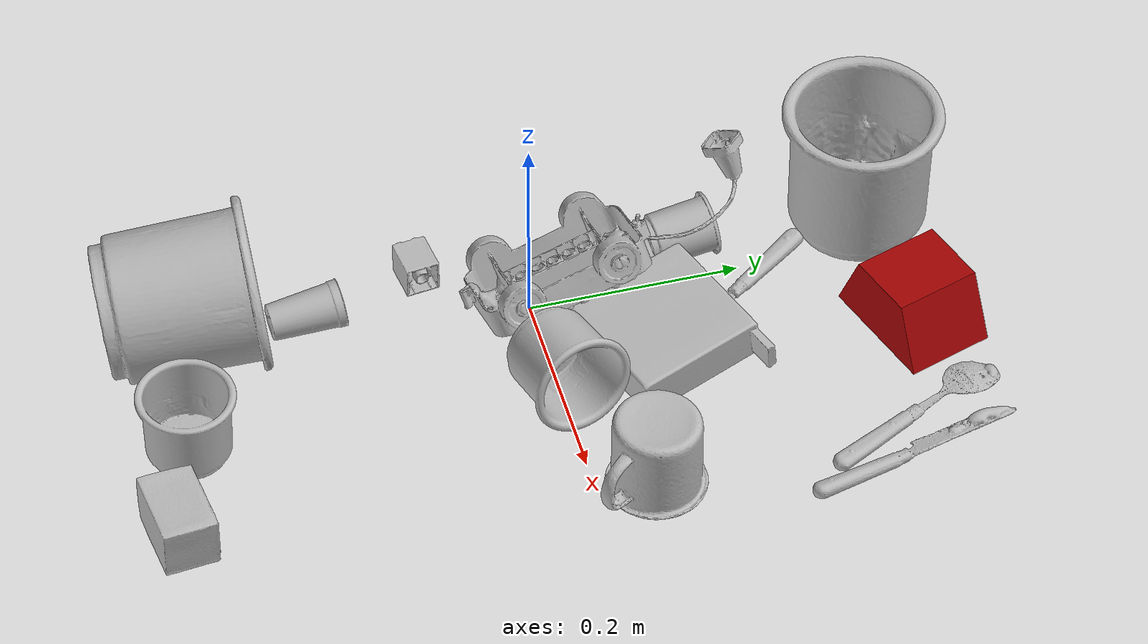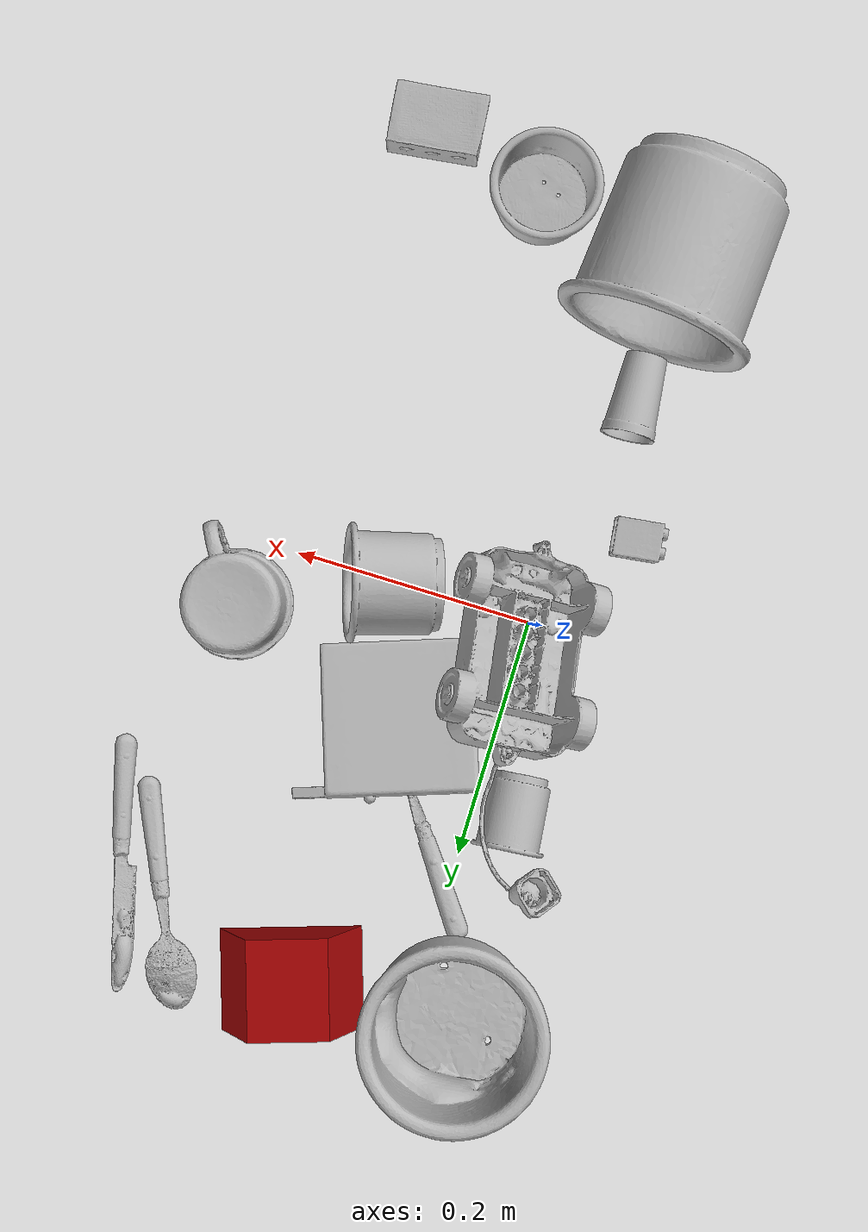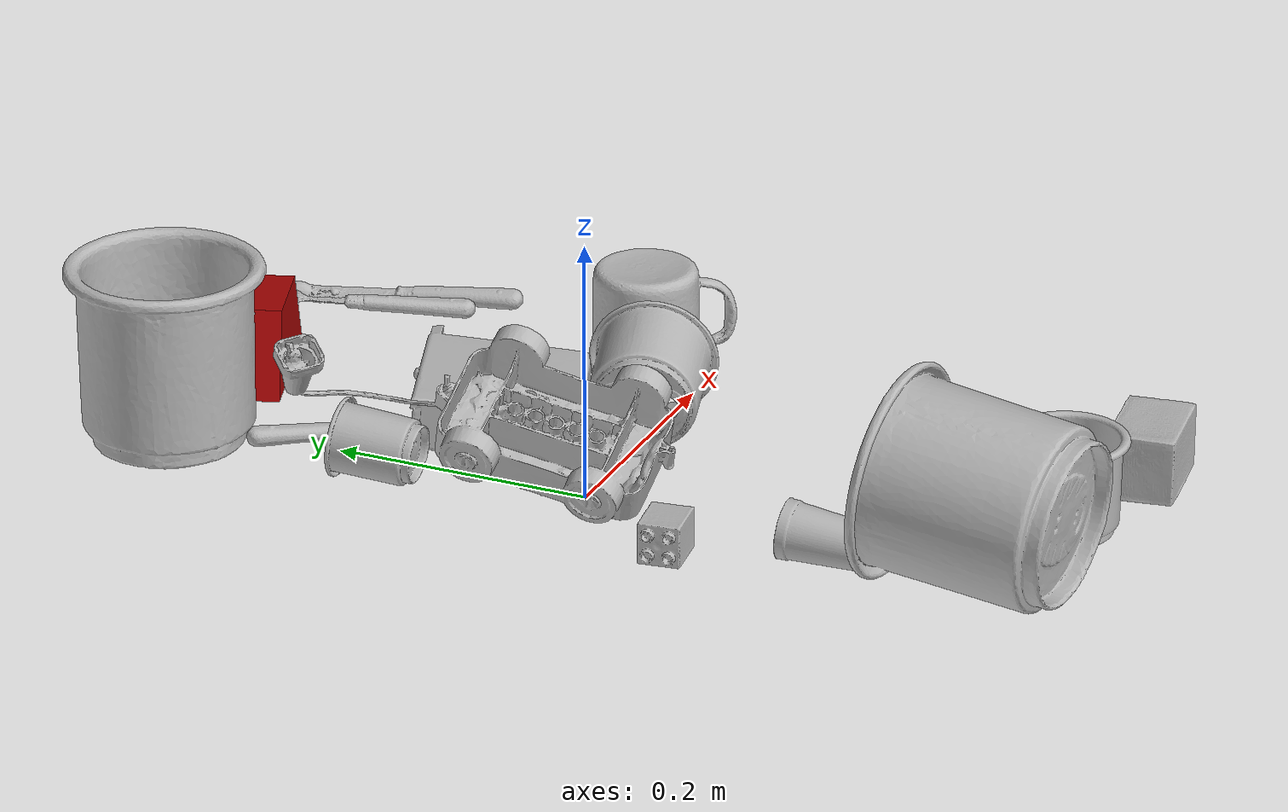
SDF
<sdf version="1.4">
  <world name="default">
    <light name="light1" type="point">
      <pose>0 0 1 0 0 0</pose>
      <diffuse>3 3 3 1</diffuse>
      <specular>3 3 3 1</specular>
    </light>
    <light name="light2" type="point">
      <pose>0 0.5 2 0 0 0</pose>
      <diffuse>1 1 1 1</diffuse>
      <specular>1 1 1 1</specular>
    </light>
    <light name="light3" type="point">
      <pose>0 0.5 2 0 0 0</pose>
      <diffuse>3 3 3 1</diffuse>
      <specular>3 3 3 1</specular>
    </light>
    <scene>
      <ambient>0.7 0.7 0.7</ambient>
    </scene>
    <model name="cup1">
      <link name="link_cup1">
        <collision name="default">
          <geometry>
            <mesh>
              <uri>model://i_cups/collision_meshes/collision.obj</uri>
              <scale>1.0 1.0 1.0</scale>
            </mesh>
          </geometry>
          <surface>
            <friction>
              <ode>
                <mu>0.5</mu>
                <mu2>0.5</mu2>
              </ode>
            </friction>
          <contact>
        <ode>
            <max_vel>0</max_vel>
            <min_depth>0.0001</min_depth>
            <kp>1e8</kp>
        </ode>
    </contact></surface>
        </collision>
        <visual name="default">
          <geometry>
            <mesh>
              <uri>model://i_cups/visual_meshes/visual.dae</uri>
              <scale>1.0 1.0 1.0</scale>
            </mesh>
          </geometry>
        </visual>
        <inertial>
          <mass>0.06118306145071983</mass>
          <pose>0.00011240330786677077 0.00016797454736661166 -0.0008579033892601728 -0.02898356853937009 -0.0398729445813228 -0.3459020996231002</pose>
          <inertia>
            <ixx>8.470886e-05</ixx>
            <iyy>8.5455235e-05</iyy>
            <izz>9.467588e-05</izz>
            <ixy>0</ixy>
            <ixz>0</ixz>
            <iyz>0</iyz>
          </inertia>
        </inertial>
      </link>
      <pose>0.11659855395555496 0.0012161124031990767 0.04509145766496658 -1.4465068823867593 -0.23872917294112017 -1.3255682798241648</pose>
    </model>
    <model name="silverware1">
      <link name="link_silverware1">
        <collision name="default">
          <geometry>
            <mesh>
              <uri>model://fork/collision_meshes/collision.obj</uri>
              <scale>1.0 1.0 1.0</scale>
            </mesh>
          </geometry>
          <surface>
            <friction>
              <ode>
                <mu>0.5</mu>
                <mu2>0.5</mu2>
              </ode>
            </friction>
          <contact>
        <ode>
            <max_vel>0</max_vel>
            <min_depth>0.0001</min_depth>
            <kp>1e8</kp>
        </ode>
    </contact></surface>
        </collision>
        <visual name="default">
          <geometry>
            <mesh>
              <uri>model://fork/visual_meshes/visual.dae</uri>
              <scale>1.0 1.0 1.0</scale>
            </mesh>
          </geometry>
        </visual>
        <inertial>
          <mass>0.031184576451778412</mass>
          <pose>-0.02957005426287651 0.00046588247641921043 0.0003218861820641905 -0.013551007459636681 -0.010977840933376642 0.014453907264632249</pose>
          <inertia>
            <ixx>1.0931959e-06</ixx>
            <iyy>8.1413935e-05</iyy>
            <izz>8.1902916e-05</izz>
            <ixy>0</ixy>
            <ixz>0</ixz>
            <iyz>0</iyz>
          </inertia>
        </inertial>
      </link>
      <pose>0.03534577041864395 0.1871529072523117 0.00743070337921381 -3.070786799553194 0.00286193495029838 -0.9481583171022188</pose>
    </model>
    <model name="cup2">
      <link name="link_cup2">
        <collision name="default">
          <geometry>
            <mesh>
              <uri>model://cup_small/collision_meshes/collision.obj</uri>
              <scale>1.0 1.0 1.0</scale>
            </mesh>
          </geometry>
          <surface>
            <friction>
              <ode>
                <mu>0.5</mu>
                <mu2>0.5</mu2>
              </ode>
            </friction>
          <contact>
        <ode>
            <max_vel>0</max_vel>
            <min_depth>0.0001</min_depth>
            <kp>1e8</kp>
        </ode>
    </contact></surface>
        </collision>
        <visual name="default">
          <geometry>
            <mesh>
              <uri>model://cup_small/visual_meshes/visual.dae</uri>
              <scale>1.0 1.0 1.0</scale>
            </mesh>
          </geometry>
        </visual>
        <inertial>
          <mass>0.03407767415046692</mass>
          <pose>0.0001048250705935061 -0.00033778452780097723 -0.010742825455963612 -0.011493231776776816 -0.015280154496379641 -0.5058119732839097</pose>
          <inertia>
            <ixx>2.0064415e-05</ixx>
            <iyy>2.0167918e-05</iyy>
            <izz>9.059144e-06</izz>
            <ixy>0</ixy>
            <ixz>0</ixz>
            <iyz>0</iyz>
          </inertia>
        </inertial>
      </link>
      <pose>-0.030096622183918953 -0.20492346584796906 0.020111143589019775 1.4948616134895831 0.14983377309961093 -3.110968208878145</pose>
    </model>
    <model name="silverware2">
      <link name="link_silverware2">
        <collision name="default">
          <geometry>
            <mesh>
              <uri>model://spoon/collision_meshes/collision.obj</uri>
              <scale>1.0 1.0 1.0</scale>
            </mesh>
          </geometry>
          <surface>
            <friction>
              <ode>
                <mu>0.5</mu>
                <mu2>0.5</mu2>
              </ode>
            </friction>
          <contact>
        <ode>
            <max_vel>0</max_vel>
            <min_depth>0.0001</min_depth>
            <kp>1e8</kp>
        </ode>
    </contact></surface>
        </collision>
        <visual name="default">
          <geometry>
            <mesh>
              <uri>model://spoon/visual_meshes/visual.dae</uri>
              <scale>1.0 1.0 1.0</scale>
            </mesh>
          </geometry>
        </visual>
        <inertial>
          <mass>0.016614587977528572</mass>
          <pose>-0.005526317749172449 -0.0016034182626754045 -0.0007271657232195139 0.03521671066550848 -0.039065848782153245 0.0061506117821598484</pose>
          <inertia>
            <ixx>9.241303e-07</ixx>
            <iyy>6.321795e-05</iyy>
            <izz>6.367369e-05</izz>
            <ixy>0</ixy>
            <ixz>0</ixz>
            <iyz>0</iyz>
          </inertia>
        </inertial>
      </link>
      <pose>0.22674798965454102 0.3042502701282501 0.010133570991456509 3.1049901983894217 -0.06197767391446496 1.993896854322278</pose>
    </model>
    <model name="cup3">
      <link name="link_cup3">
        <collision name="default">
          <geometry>
            <mesh>
              <uri>model://mug/collision_meshes/collision.obj</uri>
              <scale>1.0 1.0 1.0</scale>
            </mesh>
          </geometry>
          <surface>
            <friction>
              <ode>
                <mu>0.5</mu>
                <mu2>0.5</mu2>
              </ode>
            </friction>
          <contact>
        <ode>
            <max_vel>0</max_vel>
            <min_depth>0.0001</min_depth>
            <kp>1e8</kp>
        </ode>
    </contact></surface>
        </collision>
        <visual name="default">
          <geometry>
            <mesh>
              <uri>model://mug/visual_meshes/visual.dae</uri>
              <scale>1.0 1.0 1.0</scale>
            </mesh>
          </geometry>
        </visual>
        <inertial>
          <mass>0.2187051922082901</mass>
          <pose>0.009571668691933155 0.0008143252925947309 -0.0109473317861557 -0.1298317614392908 0.08737757629698793 0.05507296169044089</pose>
          <inertia>
            <ixx>0.00021724429</ixx>
            <iyy>0.00024264908</iyy>
            <izz>0.00028062687</izz>
            <ixy>0</ixy>
            <ixz>0</ixz>
            <iyz>0</iyz>
          </inertia>
        </inertial>
      </link>
      <pose>0.2420978844165802 0.044640179723501205 0.04095803573727608 -3.1415925586747084 4.3618055905424455e-08 2.1730205597248813</pose>
    </model>
    <model name="silverware3">
      <link name="link_silverware3">
        <collision name="default">
          <geometry>
            <mesh>
              <uri>model://knife/collision_meshes/collision.obj</uri>
              <scale>1.0 1.0 1.0</scale>
            </mesh>
          </geometry>
          <surface>
            <friction>
              <ode>
                <mu>0.5</mu>
                <mu2>0.5</mu2>
              </ode>
            </friction>
          <contact>
        <ode>
            <max_vel>0</max_vel>
            <min_depth>0.0001</min_depth>
            <kp>1e8</kp>
        </ode>
    </contact></surface>
        </collision>
        <visual name="default">
          <geometry>
            <mesh>
              <uri>model://knife/visual_meshes/visual.dae</uri>
              <scale>1.0 1.0 1.0</scale>
            </mesh>
          </geometry>
        </visual>
        <inertial>
          <mass>0.02527560666203499</mass>
          <pose>-0.02378525398671627 0.0015275124460458755 5.062016498413868e-05 0.07305987488321217 0.01724841707462807 -0.007409821427235137</pose>
          <inertia>
            <ixx>7.174241e-07</ixx>
            <iyy>9.710476e-05</iyy>
            <izz>9.733581e-05</izz>
            <ixy>0</ixy>
            <ixz>0</ixz>
            <iyz>0</iyz>
          </inertia>
        </inertial>
      </link>
      <pose>0.2630194127559662 0.2877998948097229 0.005810765083879232 2.8893742903526567 0.025914980576173016 1.837337923872709</pose>
    </model>
    <model name="cup4">
      <link name="link_cup4">
        <collision name="default">
          <geometry>
            <mesh>
              <uri>model://f_cups/collision_meshes/collision.obj</uri>
              <scale>2.0 2.0 2.0</scale>
            </mesh>
          </geometry>
          <surface>
            <friction>
              <ode>
                <mu>0.5</mu>
                <mu2>0.5</mu2>
              </ode>
            </friction>
          <contact>
        <ode>
            <max_vel>0</max_vel>
            <min_depth>0.0001</min_depth>
            <kp>1e8</kp>
        </ode>
    </contact></surface>
        </collision>
        <visual name="default">
          <geometry>
            <mesh>
              <uri>model://f_cups/visual_meshes/visual.dae</uri>
              <scale>2.0 2.0 2.0</scale>
            </mesh>
          </geometry>
        </visual>
        <inertial>
          <mass>0.45639780163764954</mass>
          <pose>-0.006342936772853136 -0.0012480145087465644 -0.007311072666198015 0.7862311529960513 -0.2607925047248709 -0.18237200478465204</pose>
          <inertia>
            <ixx>0.0017161043</ixx>
            <iyy>0.0018002132</iyy>
            <izz>0.0018740727</izz>
            <ixy>0</ixy>
            <ixz>0</ixz>
            <iyz>0</iyz>
          </inertia>
        </inertial>
      </link>
      <pose>-0.02710806205868721 -0.3209919035434723 0.07425680756568909 1.2958551009859636 -1.219428829918805 -2.958802160652511</pose>
    </model>
    <model name="cup41">
      <link name="link_cup41">
        <collision name="default">
          <geometry>
            <mesh>
              <uri>model://b_cups/collision_meshes/collision.obj</uri>
              <scale>1.0 1.0 1.0</scale>
            </mesh>
          </geometry>
          <surface>
            <friction>
              <ode>
                <mu>0.5</mu>
                <mu2>0.5</mu2>
              </ode>
            </friction>
          <contact>
        <ode>
            <max_vel>0</max_vel>
            <min_depth>0.0001</min_depth>
            <kp>1e8</kp>
        </ode>
    </contact></surface>
        </collision>
        <visual name="default">
          <geometry>
            <mesh>
              <uri>model://b_cups/visual_meshes/visual.dae</uri>
              <scale>1.0 1.0 1.0</scale>
            </mesh>
          </geometry>
        </visual>
        <inertial>
          <mass>0.02191556617617607</mass>
          <pose>0.0005182005115784705 0.0018058598507195711 -0.0013381809694692492 0.11356347292067202 0.038725069075056226 -0.34569439603942165</pose>
          <inertia>
            <ixx>1.4345273e-05</ixx>
            <iyy>1.4072923e-05</iyy>
            <izz>1.2071279e-05</izz>
            <ixy>0</ixy>
            <ixz>0</ixz>
            <iyz>0</iyz>
          </inertia>
        </inertial>
      </link>
      <pose>-0.032744377851486206 0.15198782086372375 0.02784038707613945 -1.4442521264843058 0.7727153962850627 0.1772276100013271</pose>
    </model>
    <model name="cup5">
      <link name="link_cup5">
        <collision name="default">
          <geometry>
            <mesh>
              <uri>model://e_cups/collision_meshes/collision.obj</uri>
              <scale>2.0 2.0 2.0</scale>
            </mesh>
          </geometry>
          <surface>
            <friction>
              <ode>
                <mu>0.5</mu>
                <mu2>0.5</mu2>
              </ode>
            </friction>
          <contact>
        <ode>
            <max_vel>0</max_vel>
            <min_depth>0.0001</min_depth>
            <kp>1e8</kp>
        </ode>
    </contact></surface>
        </collision>
        <visual name="default">
          <geometry>
            <mesh>
              <uri>model://e_cups/visual_meshes/visual.dae</uri>
              <scale>2.0 2.0 2.0</scale>
            </mesh>
          </geometry>
        </visual>
        <inertial>
          <mass>0.30448246002197266</mass>
          <pose>0.0022711469791829586 0.005759572610259056 -0.00776594178751111 0.6952384510578399 0.08767941436067322 -0.5235260729612989</pose>
          <inertia>
            <ixx>0.0010739095</ixx>
            <iyy>0.001122389</iyy>
            <izz>0.0010267813</izz>
            <ixy>0</ixy>
            <ixz>0</ixz>
            <iyz>0</iyz>
          </inertia>
        </inertial>
      </link>
      <pose>-0.03217391297221184 0.3269013464450836 0.07139374315738678 -0.007095848483150256 0.0037974319138210427 -0.3837369268060602</pose>
    </model>
    <model name="cup51">
      <link name="link_cup51">
        <collision name="default">
          <geometry>
            <mesh>
              <uri>model://h_cups/collision_meshes/collision.obj</uri>
              <scale>1.0 1.0 1.0</scale>
            </mesh>
          </geometry>
          <surface>
            <friction>
              <ode>
                <mu>0.5</mu>
                <mu2>0.5</mu2>
              </ode>
            </friction>
          <contact>
        <ode>
            <max_vel>0</max_vel>
            <min_depth>0.0001</min_depth>
            <kp>1e8</kp>
        </ode>
    </contact></surface>
        </collision>
        <visual name="default">
          <geometry>
            <mesh>
              <uri>model://h_cups/visual_meshes/visual.dae</uri>
              <scale>1.0 1.0 1.0</scale>
            </mesh>
          </geometry>
        </visual>
        <inertial>
          <mass>0.042455922812223434</mass>
          <pose>-2.703044083318673e-05 0.00023018660431262106 -0.0018405403243377805 -0.024361995264993386 0.06545231449212868 0.1288536550905752</pose>
          <inertia>
            <ixx>5.4829856e-05</ixx>
            <iyy>5.4175573e-05</iyy>
            <izz>5.7501496e-05</izz>
            <ixy>0</ixy>
            <ixz>0</ixz>
            <iyz>0</iyz>
          </inertia>
        </inertial>
      </link>
      <pose>0.09219150245189667 -0.34027552604675293 0.0377579964697361 -4.9909738905024255e-08 -4.665219913436017e-09 1.0411355286276243</pose>
    </model>
    <model name="toy1">
      <link name="link_toy1">
        <collision name="default">
          <geometry>
            <mesh>
              <uri>model://f_lego_duplo/collision_meshes/collision.obj</uri>
              <scale>1.0 1.0 1.0</scale>
            </mesh>
          </geometry>
          <surface>
            <friction>
              <ode>
                <mu>0.5</mu>
                <mu2>0.5</mu2>
              </ode>
            </friction>
          <contact>
        <ode>
            <max_vel>0</max_vel>
            <min_depth>0.0001</min_depth>
            <kp>1e8</kp>
        </ode>
    </contact></surface>
        </collision>
        <visual name="default">
          <geometry>
            <mesh>
              <uri>model://f_lego_duplo/visual_meshes/visual.dae</uri>
              <scale>1.0 1.0 1.0</scale>
            </mesh>
          </geometry>
        </visual>
        <inertial>
          <mass>0.02241816557943821</mass>
          <pose>2.3694117771810852e-05 0.0001339316659141332 0.0018837875686585903 0.029838520561624126 -0.014425134948969536 -0.6756620822172864</pose>
          <inertia>
            <ixx>4.7370827e-06</ixx>
            <iyy>4.779284e-06</iyy>
            <izz>4.1119874e-06</izz>
            <ixy>0</ixy>
            <ixz>0</ixz>
            <iyz>0</iyz>
          </inertia>
        </inertial>
      </link>
      <pose>-0.06655842065811157 -0.09234070032835007 0.01636396534740925 1.196682803248351 -1.5707906982630047 -1.0679195499248209</pose>
    </model>
    <model name="toy2">
      <link name="link_toy2">
        <collision name="default">
          <geometry>
            <mesh>
              <uri>model://nine_hole_peg_test/collision_meshes/collision.obj</uri>
              <scale>1.0 1.0 1.0</scale>
            </mesh>
          </geometry>
          <surface>
            <friction>
              <ode>
                <mu>0.5</mu>
                <mu2>0.5</mu2>
              </ode>
            </friction>
          <contact>
        <ode>
            <max_vel>0</max_vel>
            <min_depth>0.0001</min_depth>
            <kp>1e8</kp>
        </ode>
    </contact></surface>
        </collision>
        <visual name="default">
          <geometry>
            <mesh>
              <uri>model://nine_hole_peg_test/visual_meshes/visual.dae</uri>
              <scale>1.0 1.0 1.0</scale>
            </mesh>
          </geometry>
        </visual>
        <inertial>
          <mass>0.9336897134780884</mass>
          <pose>-0.004617386497557163 -0.009647615253925323 2.6460686058271676e-05 -0.0014666796876693252 0.0007194179493738156 -0.6342417556307235</pose>
          <inertia>
            <ixx>0.0014599775</ixx>
            <iyy>0.0013631656</iyy>
            <izz>0.0025583105</izz>
            <ixy>0</ixy>
            <ixz>0</ixz>
            <iyz>0</iyz>
          </inertia>
        </inertial>
      </link>
      <pose>0.0879354178905487 0.11395955085754395 0.027102155610919 -3.1378628087426392 -0.0989248769844205 1.9012574880631397</pose>
    </model>
    <model name="toy3">
      <link name="link_toy3">
        <collision name="default">
          <geometry>
            <mesh>
              <uri>model://prism/collision_meshes/collision.obj</uri>
              <scale>1.0 1.0 1.0</scale>
            </mesh>
          </geometry>
          <surface>
            <friction>
              <ode>
                <mu>0.5</mu>
                <mu2>0.5</mu2>
              </ode>
            </friction>
          <contact>
        <ode>
            <max_vel>0</max_vel>
            <min_depth>0.0001</min_depth>
            <kp>1e8</kp>
        </ode>
    </contact></surface>
        </collision>
        <visual name="default">
          <geometry>
            <mesh>
              <uri>model://prism/visual_meshes/visual.dae</uri>
              <scale>1.0 1.0 1.0</scale>
            </mesh>
          </geometry>
        </visual>
        <inertial>
          <mass>0.45664992928504944</mass>
          <pose>-9.85359656624496e-05 -4.96157269935793e-07 -0.0033869100734591484 0.0 0.006559178903460961 0.0</pose>
          <inertia>
            <ixx>0.0004121209</ixx>
            <iyy>0.00049805344</iyy>
            <izz>0.0006100559</izz>
            <ixy>0</ixy>
            <ixz>0</ixz>
            <iyz>0</iyz>
          </inertia>
        </inertial>
      </link>
      <pose>0.10217972099781036 0.339233934879303 0.03217000514268875 9.364712647302012e-08 8.272676185490563e-08 -2.8265785985731218</pose>
    </model>
    <model name="toy4">
      <link name="link_toy4">
        <collision name="default">
          <geometry>
            <mesh>
              <uri>model://g_lego_duplo/collision_meshes/collision.obj</uri>
              <scale>1.0 1.0 1.0</scale>
            </mesh>
          </geometry>
          <surface>
            <friction>
              <ode>
                <mu>0.5</mu>
                <mu2>0.5</mu2>
              </ode>
            </friction>
          <contact>
        <ode>
            <max_vel>0</max_vel>
            <min_depth>0.0001</min_depth>
            <kp>1e8</kp>
        </ode>
    </contact></surface>
        </collision>
        <visual name="default">
          <geometry>
            <mesh>
              <uri>model://g_lego_duplo/visual_meshes/visual.dae</uri>
              <scale>1.0 1.0 1.0</scale>
            </mesh>
          </geometry>
        </visual>
        <inertial>
          <mass>0.39620378613471985</mass>
          <pose>-0.05004769191145897 0.0017554654041305184 0.003880677744746208 0.010963058510667364 0.03810828654928447 -0.09653021192595126</pose>
          <inertia>
            <ixx>0.0005741041</ixx>
            <iyy>0.0017357017</iyy>
            <izz>0.0021714251</izz>
            <ixy>0</ixy>
            <ixz>0</ixz>
            <iyz>0</iyz>
          </inertia>
        </inertial>
      </link>
      <pose>-0.010866496711969376 0.08276346325874329 0.06150733679533005 2.763263603990643 -0.21777477579749052 1.716314468195856</pose>
    </model>
    <model name="toy5">
      <link name="link_toy5">
        <collision name="default">
          <geometry>
            <mesh>
              <uri>model://foam_brick/collision_meshes/collision.obj</uri>
              <scale>1.0 1.0 1.0</scale>
            </mesh>
          </geometry>
          <surface>
            <friction>
              <ode>
                <mu>0.5</mu>
                <mu2>0.5</mu2>
              </ode>
            </friction>
          <contact>
        <ode>
            <max_vel>0</max_vel>
            <min_depth>0.0001</min_depth>
            <kp>1e8</kp>
        </ode>
    </contact></surface>
        </collision>
        <visual name="default">
          <geometry>
            <mesh>
              <uri>model://foam_brick/visual_meshes/visual.dae</uri>
              <scale>1.0 1.0 1.0</scale>
            </mesh>
          </geometry>
        </visual>
        <inertial>
          <mass>0.10564772039651871</mass>
          <pose>-0.00025224717683158815 0.00034584361128509045 -0.00025321010616607964 -0.29402271699624904 0.017274444128295662 -0.0007449905040366932</pose>
          <inertia>
            <ixx>4.6148893e-05</ixx>
            <iyy>7.367908e-05</iyy>
            <izz>7.4615455e-05</izz>
            <ixy>0</ixy>
            <ixz>0</ixz>
            <iyz>0</iyz>
          </inertia>
        </inertial>
      </link>
      <pose>0.19186966121196747 -0.3700280487537384 0.025910692289471626 1.5828204816570621 -0.00037575725979569483 -3.0183710047571415</pose>
    </model>
  <physics type="ode">
      <max_contacts>50</max_contacts>
      <ode>
        <solver>
          <type>quick</type>
          <iters>75</iters>
        </solver>
        <constraints>
          <contact_max_correcting_vel>0</contact_max_correcting_vel>
          <contact_surface_layer>0</contact_surface_layer>
        </constraints>
      </ode>
    </physics></world>
</sdf>
